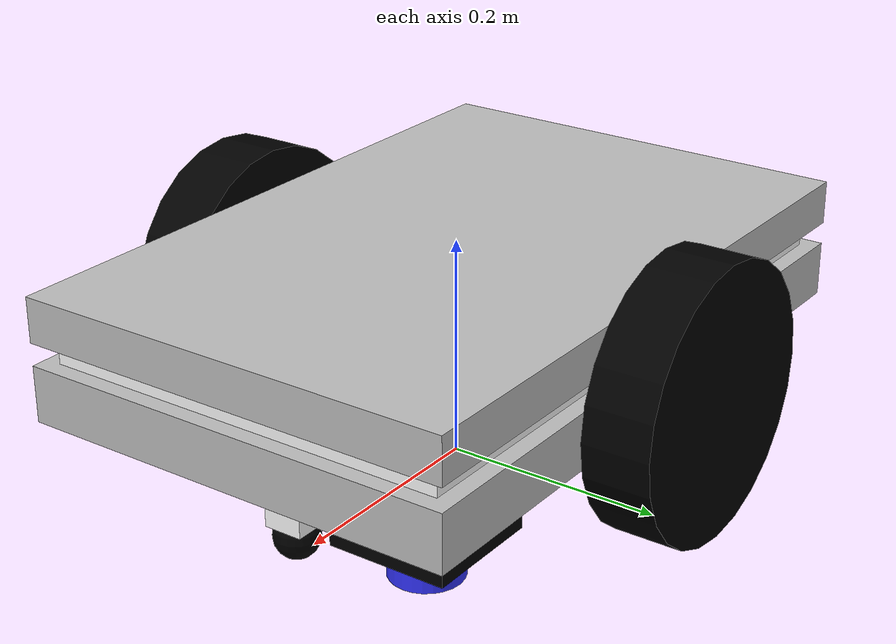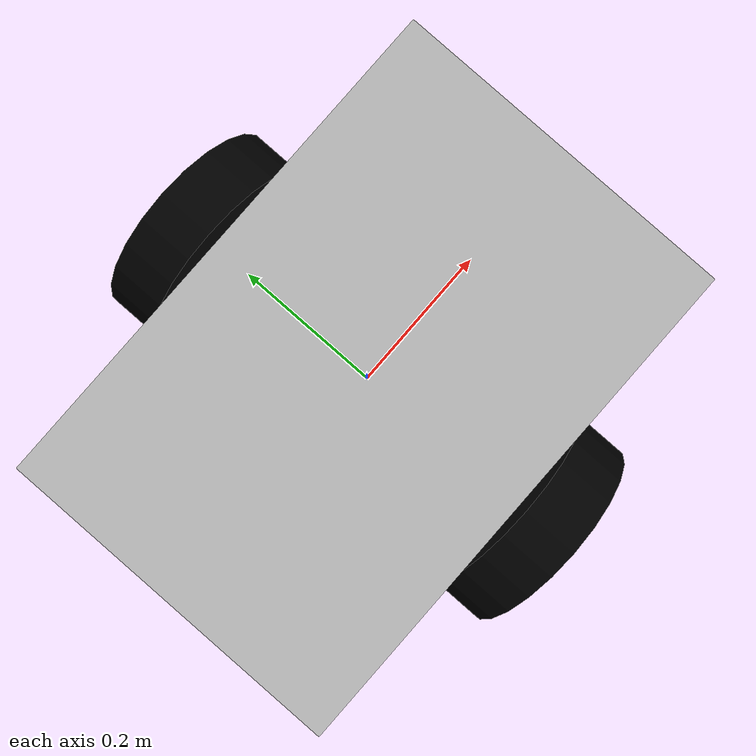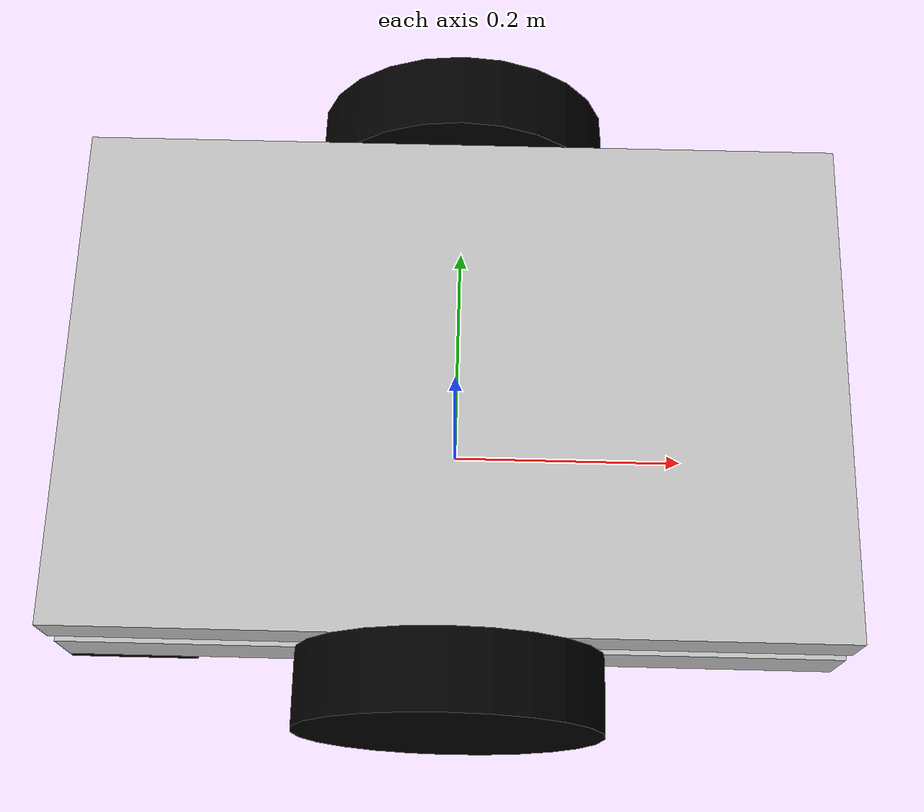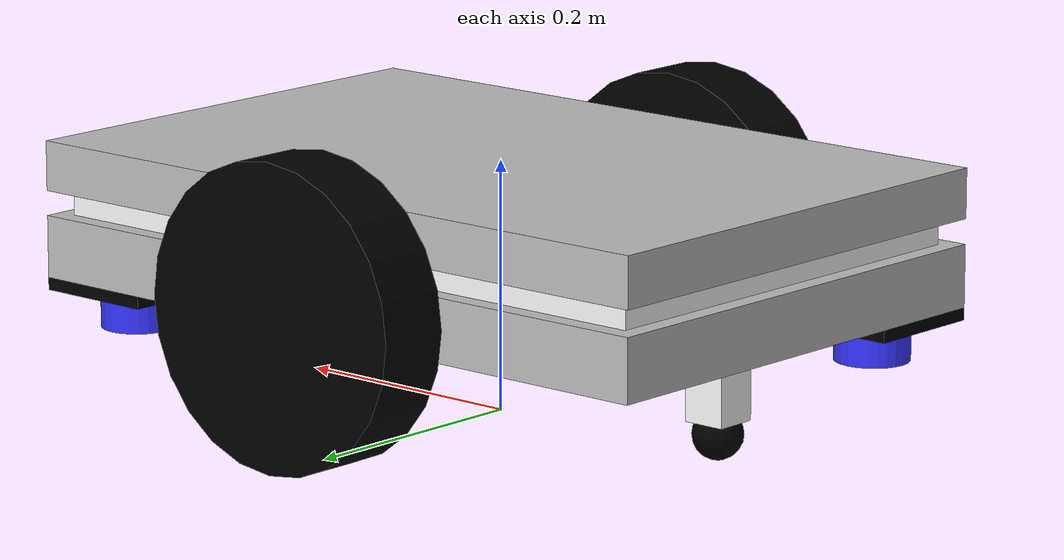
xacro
<?xml version="1.0"?>
<robot xmlns:xacro = "http://www.ros.org/wiki/xacro" name="robot">

    <material name="white">
        <color rgba="1.0 1.0 1.0 1.0"/>
    </material>

    <material name="orange">
        <color rgba="1.0 0.3 0.1 1.0"/>
    </material>

    <material name="blue">
        <color rgba="0.2 0.2 1.0 1.0"/>
    </material>

    <material name="black">
        <color rgba="0 0 0 1.0"/>
    </material>

    <material name="silver">
        <color rgba="0.75 0.75 0.75 1.0"/>
    </material>

    <material name="grey">
        <color rgba="0.5 0.5 0.5 1.0"/>
    </material>

    <!-- BASE LINK -->

    <link name="base_link">
        <origin xyz="0.0 0.0 0.0"/>
    </link>

    <!-- CHASSIS -->

    <joint name="base_to_chassis1" type="fixed">
        <parent link="base_link"/>
        <child link="chassis_1"/>
        <origin xyz="0 0 0.12"/>
    </joint>

    <link name="chassis_1">
        <visual>
            <origin xyz="0 0 0.0"/>
            <geometry>
                <box size="0.60 0.40 0.05"/>
            </geometry>
            <material name="silver"/>
        </visual>
        <collision>
            <origin xyz="0 0 0.0"/>
            <geometry>
                <box size="0.60 0.40 0.05"/>
            </geometry>
        </collision>
        <inertial>
            <origin xyz="0 0 0" rpy="0 0 0"/>
            <mass value="12.48"/>
            <inertia ixx="0.17" ixy="0.0" ixz="0.0"
                    iyy="0.32" iyz="0.0"
                    izz="0.47"/>
        </inertial>
    </link>

    <joint name="chassis1_to_chassis2" type="fixed">
        <parent link="chassis_1"/>
        <child link="chassis_2"/>
        <origin xyz="0 0 0.035"/>
    </joint>

    <link name="chassis_2">
        <visual>
            <origin xyz="0 0 0.0"/>
            <geometry>
                <box size="0.57 0.37 0.02"/>
            </geometry>
            <material name="white"/>
            <gazebo reference="chassis_2">
                <material>Gazebo/Orange</material>
            </gazebo>
        </visual>
        <collision>
            <origin xyz="0 0 0.0"/>
            <geometry>
                <box size="0.57 0.37 0.02"/>
            </geometry>
        </collision>
        <inertial>
            <origin xyz="0 0 0" rpy="0 0 0"/>
            <mass value="4.39"/>
            <inertia ixx="0.04" ixy="0.0" ixz="0.0"
                    iyy="0.10" iyz="0.0"
                    izz="0.13"/>
        </inertial>
    </link>

    <joint name="chassis2_to_chassis3" type="fixed">
        <parent link="chassis_2"/>
        <child link="chassis_3"/>
        <origin xyz="0 0 0.03"/>
    </joint>

    <link name="chassis_3">
        <visual>
            <origin xyz="0 0 0.0"/>
            <geometry>
                <box size="0.60 0.40 0.04"/>
            </geometry>
            <material name="silver"/>
        </visual>
        <collision>
            <origin xyz="0 0 0.0"/>
            <geometry>
                <box size="0.60 0.40 0.04"/>
            </geometry>
        </collision>
        <inertial>
            <origin xyz="0 0 0" rpy="0 0 0"/>
            <mass value="9.98"/>
            <inertia ixx="0.14" ixy="0.0" ixz="0.0"
                    iyy="0.31" iyz="0.0"
                    izz="0.41"/>
        </inertial>
    </link>

    <!-- DRIVE WHEELS -->

    <!-- LEFT WHEEL LINK -->

    <joint name="left_wheel_joint" type="continuous">
        <parent link="base_link"/>
        <child link="left_wheel"/>
        <origin xyz="0.0 0.23 0.12" rpy="-${pi/2} 0.0 0.0"/>
        <axis xyz="0.0 0.0 1.0"/>
    </joint>

    <link name="left_wheel">
        <visual>
            <origin xyz="0.0 0.0 0.0"/>
            <geometry>
                <cylinder radius="0.12" length="0.06"/>
            </geometry>
            <material name="black"/>
        </visual>
        <collision>
            <origin xyz="0.0 0.0 0.0"/>
            <geometry>
                <cylinder radius="0.12" length="0.06"/>
            </geometry>
        </collision>
        <inertial>
            <origin xyz="0 0 0" rpy="0 0 0"/>
            <mass value="2.98"/>
            <inertia ixx="0.0358" ixy="0.0" ixz="0.0"
                    iyy="0.0358" iyz="0.0"
                    izz="0.0214"/>
        </inertial>
    </link>

    <!-- RIGHT WHEEL LINK -->

    <joint name="right_wheel_joint" type="continuous">
        <parent link="base_link"/>
        <child link="right_wheel"/>
        <origin xyz="0.0 -0.23 0.12" rpy="${pi/2} 0.0 0.0"/>
        <axis xyz="0.0 0.0 -1.0"/>
    </joint>

    <link name="right_wheel">
        <visual>
            <origin xyz="0.0 0.0 0.0"/>
            <geometry>
                <cylinder radius="0.12" length="0.06"/>
            </geometry>
            <material name="black"/>
        </visual>
        <collision>
            <origin xyz="0.0 0.0 0.0"/>
            <geometry>
                <cylinder radius="0.12" length="0.06"/>
            </geometry>
        </collision>
        <inertial>
            <origin xyz="0 0 0" rpy="0 0 0"/>
            <mass value="2.98"/>
            <inertia ixx="0.0358" ixy="0.0" ixz="0.0"
                    iyy="0.0358" iyz="0.0"
                    izz="0.0214"/>
        </inertial>
    </link>

    <!-- CASTER WHEEL LINK -->

   <joint name="caster_wheel_joint1a" type="fixed">
        <parent link="chassis_1"/>
        <child link="front_caster_wheel_top"/>
        <origin xyz="0.22 0.0 -0.05"/>
        <axis xyz="0.0 0.0 0.0"/>
    </joint>

     <link name="front_caster_wheel_top">
        <visual>
            <origin xyz="0.0 0.0 0.0"/>
            <geometry>
                <box size="0.035 0.035 0.08"/>
            </geometry>
            <material name="white"/>
        </visual>
        <collision>
            <origin xyz="0.0 0.0 0.0"/>
            <geometry>
                <box size="0.035 0.035 0.08"/>
            </geometry>
        </collision>
        <inertial>
            <origin xyz="0 0 0" rpy="0 0 0"/>
            <mass value="0.102"/>
            <inertia ixx="6.19e-5" ixy="0.0" ixz="0.0"
                    iyy="6.19e-5" iyz="0.0"
                    izz="2.70e-5"/>
        </inertial>
    </link>

    <joint name="caster_wheel_joint1b" type="fixed">
        <parent link="front_caster_wheel_top"/>
        <child link="front_caster_wheel_bottom"/>
        <origin xyz="0.0 0.0 -0.05"/>
        <axis xyz="0.0 0.0 0.0"/>
    </joint>

    <link name="front_caster_wheel_bottom">
        <visual>
            <origin xyz="0.0 0.0 0.0"/>
            <geometry>
                <sphere radius="0.02"/>
            </geometry>
            <material name="black"/>
        </visual>
        <collision>
            <origin xyz="0.0 0.0 0.0"/>
            <geometry>
                <sphere radius="0.02"/>
            </geometry>
        </collision>
        <inertial>
            <origin xyz="0 0 0" rpy="0 0 0"/>
            <mass value="0.0369"/>
            <inertia ixx="2.95e-6" ixy="0.0" ixz="0.0"
                    iyy="2.95e-6" iyz="0.0"
                    izz="2.95e-6"/>
        </inertial>
    </link>

    <joint name="caster_wheel_joint2a" type="fixed">
        <parent link="chassis_1"/>
        <child link="back_caster_wheel_top"/>
        <origin xyz="-0.22 0.0 -0.05"/>
        <axis xyz="0.0 0.0 0.0"/>
    </joint>

     <link name="back_caster_wheel_top">
        <visual>
            <origin xyz="0.0 0.0 0.0"/>
            <geometry>
                <box size="0.035 0.035 0.08"/>
            </geometry>
            <material name="white"/>
        </visual>
        <collision>
            <origin xyz="0.0 0.0 0.0"/>
            <geometry>
                <box size="0.035 0.035 0.08"/>
            </geometry>
        </collision>
        <inertial>
            <origin xyz="0 0 0" rpy="0 0 0"/>
            <mass value="0.102"/>
            <inertia ixx="6.19e-5" ixy="0.0" ixz="0.0"
                    iyy="6.19e-5" iyz="0.0"
                    izz="2.70e-5"/>
        </inertial>
    </link>

    <joint name="caster_wheel_joint2b" type="fixed">
        <parent link="back_caster_wheel_top"/>
        <child link="back_caster_wheel_bottom"/>
        <origin xyz="0.0 0.0 -0.05"/>
        <axis xyz="0.0 0.0 0.0"/>
    </joint>

    <link name="back_caster_wheel_bottom">
        <visual>
            <origin xyz="0.0 0.0 0.0"/>
            <geometry>
                <sphere radius="0.02"/>
            </geometry>
            <material name="black"/>
        </visual>
        <collision>
            <origin xyz="0.0 0.0 0.0"/>
            <geometry>
                <sphere radius="0.02"/>
            </geometry>
        </collision>
        <inertial>
            <origin xyz="0 0 0" rpy="0 0 0"/>
            <mass value="0.0369"/>
            <inertia ixx="2.95e-6" ixy="0.0" ixz="0.0"
                    iyy="2.95e-6" iyz="0.0"
                    izz="2.95e-6"/>
        </inertial>

    </link>

    <!-- Lidar Base Link -->

    <joint name="chassis1_to_front_lidar_base" type="fixed">
        <parent link="chassis_1"/>
        <child link="front_lidar_base"/>
        <origin xyz="0.25 0.15 -0.03"/>
    </joint>

    <link name="front_lidar_base">
        <visual>
            <origin xyz="0 0 0.0"/>
            <geometry>
                <box size="0.1 0.1 0.01"/>
            </geometry>
            <material name="black"/>
        </visual>
        <collision>
            <origin xyz="0 0 0.0"/>
            <geometry>
                <box size="0.1 0.1 0.01"/>
            </geometry>
        </collision>
        <inertial>
            <origin xyz="0 0 0" rpy="0 0 0"/>
            <mass value="0.104"/>
            <inertia ixx="8.84e-5" ixy="0.0" ixz="0.0"
                    iyy="8.84e-5" iyz="0.0"
                    izz="1.77e-4"/>
        </inertial>

    </link>

    <joint name="chassis1_to_back_lidar_base" type="fixed">
        <parent link="chassis_1"/>
        <child link="back_lidar_base"/>
        <origin xyz="-0.25 -0.15 -0.03"/>
    </joint>

    <link name="back_lidar_base">
        <visual>
            <origin xyz="0 0 0.0"/>
            <geometry>
                <box size="0.1 0.1 0.01"/>
            </geometry>
            <material name="black"/>
        </visual>
        <collision>
            <origin xyz="0 0 0.0"/>
            <geometry>
                <box size="0.1 0.1 0.01"/>
            </geometry>
        </collision>
        <inertial>
            <origin xyz="0 0 0" rpy="0 0 0"/>
            <mass value="0.104"/>
            <inertia ixx="8.84e-5" ixy="0.0" ixz="0.0"
                    iyy="8.84e-5" iyz="0.0"
                    izz="1.77e-4"/>
        </inertial>
    </link>

    <joint name="front_lidar_base_to_front_lidar" type="fixed">
        <parent link="base_link"/>
        <child link="front_lidar"/>
        <origin xyz="0.25 0.15 0.07"/>
    </joint>

    <link name="front_lidar">
        <visual>
            <origin xyz="0 0 0.0"/>
            <geometry>
                <cylinder radius="0.03" length="0.03"/>
            </geometry>
            <material name="blue"/>
        </visual>
        <collision>
            <origin xyz="0 0 0.0"/>
            <geometry>
                <cylinder radius="0.03" length="0.03"/>
            </geometry>
        </collision>
        <inertial>
            <origin xyz="0 0 0" rpy="0 0 0"/>
            <mass value="0.0882"/>
            <inertia ixx="1.95e-5" ixy="0.0" ixz="0.0"
                    iyy="1.95e-5" iyz="0.0"
                    izz="3.97e-5"/>
        </inertial>
    </link>

    <joint name="back_lidar_base_to_back_lidar" type="fixed">
        <parent link="base_link"/>
        <child link="back_lidar"/>
        <origin xyz="-0.25 -0.15 0.07" rpy = "0.0 0.0 ${pi}"/>
    </joint>

    <link name="back_lidar">
        <visual>
            <origin xyz="0 0 0.0"/>
            <geometry>
                <cylinder radius="0.03" length="0.03"/>
            </geometry>
            <material name="blue"/>
        </visual>
        <collision>
            <origin xyz="0 0 0.0"/>
            <geometry>
                <cylinder radius="0.03" length="0.03"/>
            </geometry>
        </collision>
        <inertial>
            <origin xyz="0 0 0" rpy="0 0 0"/>
            <mass value="0.0882"/>
            <inertia ixx="1.95e-5" ixy="0.0" ixz="0.0"
                    iyy="1.95e-5" iyz="0.0"
                    izz="3.97e-5"/>
        </inertial>
    </link>

    <gazebo reference="chassis_1">
        <material>Gazebo/Orange</material>
    </gazebo>
    <gazebo reference="chassis_2">
        <material>Gazebo/White</material>
    </gazebo>
    <gazebo reference="chassis_3">
        <material>Gazebo/Orange</material>
    </gazebo>
    <gazebo reference="left_wheel">
        <material>Gazebo/Black</material>
    </gazebo>
    <gazebo reference="right_wheel">
        <material>Gazebo/Black</material>
    </gazebo>
    <gazebo reference="front_lidar">
        <material>Gazebo/Blue</material>
    </gazebo>
    <gazebo reference="back_lidar">
        <material>Gazebo/Blue</material>
    </gazebo>
    <gazebo reference="front_caster_wheel_bottom">
        <material>Gazebo/Black</material>
        <mu1 value ="0.008"/>
        <mu2 value ="0.008"/>
    </gazebo>
    <gazebo reference="back_caster_wheel_bottom">
        <material>Gazebo/Black</material>
        <mu1 value ="0.008"/>
        <mu2 value ="0.008"/>
    </gazebo>
</robot>
